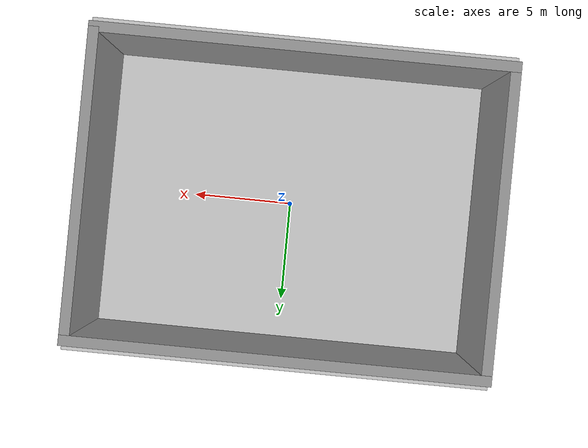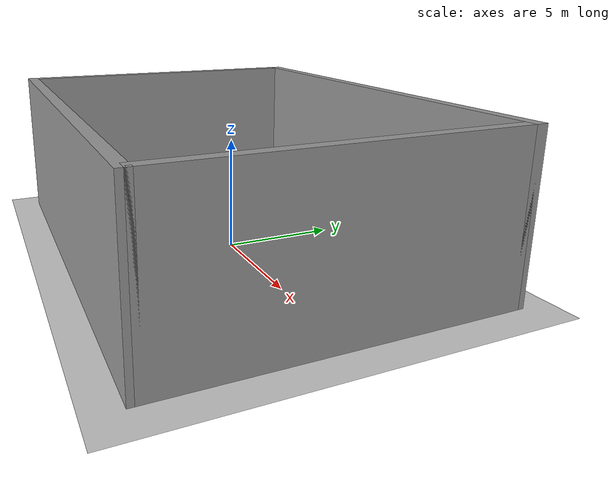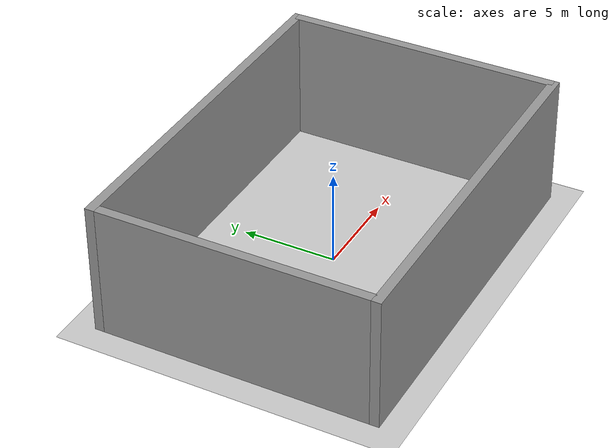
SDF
<sdf version="1.7">
  <world name="default">

    <model name='ground_plane'>
      <static>1</static>
      <link name='link'>
	<pose>0 0 0 0 0 0</pose>
	<collision name='collision'>
	  <geometry>
	    <plane>
	      <normal>0 0 1</normal>
	      <size>20 15</size>
	    </plane>
	  </geometry>
	  <surface>
	    <contact>
	      <collide_bitmask>65535</collide_bitmask>
	      <ode/>
	    </contact>
	    <friction>
	      <ode>
	        <mu>100</mu>
	        <mu2>50</mu2>
	      </ode>
	      <torsional>
	        <ode/>
	      </torsional>
	    </friction>
	    <bounce/>
   	  </surface>
	  <max_contacts>10</max_contacts>
	</collision>
	<visual name='visual'>
	  <cast_shadows>0</cast_shadows>
	  <geometry>
	    <plane>
	      <normal>0 0 1</normal>
	      <size>20 15</size>
	    </plane>
	  </geometry>
	  <material>
	    <script>
	      <uri>file://media/materials/scripts/gazebo.material</uri>
	      <name>Gazebo/Grey</name>
	    </script>
	  </material>
	</visual>
	<self_collide>0</self_collide>
	<enable_wind>0</enable_wind>
	<kinematic>0</kinematic>
      </link>
    </model>
    <model name='walls'>
      <link name='wall_1'>
        <pose>0 7.25 3.5 0 0 0</pose>
        <collision name='collision'>
          <geometry>
            <box>
              <size>20 0.5 7</size>
            </box>
          </geometry>
          <surface>
            <contact>
              <collide_bitmask>65535</collide_bitmask>
              <ode/>
            </contact>
            <friction>
              <ode>
                <mu>100</mu>
                <mu2>50</mu2>
              </ode>
            <torsional>
              <ode/>
            </torsional>
            </friction>
            <bounce/>
          </surface>
          <max_contacts>10</max_contacts>
        </collision>
        <visual name='visual'>
          <geometry>
            <box>
              <size>20 0.5 7</size>
            </box>
          </geometry>
          <material>
            <script>
              <uri>file://media/materials/scripts/gazebo.material</uri>
              <name>Gazebo/Grey</name>
            </script>
          </material>
        </visual>
        <self_collide>0</self_collide>
        <enable_wind>0</enable_wind>
        <kinematic>0</kinematic>
      </link>
      <link name='wall_2'>
	<pose>9.75 0 3.5 0 0 0</pose>
        <collision name='collision'>
          <geometry>
            <box>
              <size>0.5 14.5 7</size>
            </box>
          </geometry>
          <surface>
            <contact>
              <collide_bitmask>65535</collide_bitmask>
              <ode/>
            </contact>
            <friction>
              <ode>
                <mu>100</mu>
                <mu2>50</mu2>
              </ode>
              <torsional>
                <ode/>
              </torsional>
            </friction>
            <bounce/>
          </surface>
          <max_contacts>10</max_contacts>
        </collision>
        <visual name='visual'>
          <geometry>
            <box>
              <size>0.5 14.5 7</size>
            </box>
          </geometry>
          <material>
            <script>
              <uri>file://media/materials/scripts/gazebo.material</uri>
              <name>Gazebo/Grey</name>
            </script>
          </material>
        </visual>
        <self_collide>0</self_collide>
        <enable_wind>0</enable_wind>
        <kinematic>0</kinematic>
      </link>
      <link name='wall_3'>
	<pose>0 -7.25 3.5 0 0 0</pose>
        <collision name='collision'>
          <geometry>
          <box>
            <size>20 0.5 7</size>
          </box>
          </geometry>
          <surface>
            <contact>
              <collide_bitmask>65535</collide_bitmask>
              <ode/>
            </contact>
            <friction>
              <ode>
                <mu>100</mu>
                <mu2>50</mu2>
              </ode>
              <torsional>
                <ode/>
              </torsional>
            </friction>
            <bounce/>
          </surface>
          <max_contacts>10</max_contacts>
        </collision>
        <visual name='visual'>
          <geometry>
            <box>
              <size>20 0.5 7</size>
            </box>
          </geometry>
          <material>
            <script>
              <uri>file://media/materials/scripts/gazebo.material</uri>
              <name>Gazebo/Grey</name>
            </script>
          </material>
        </visual>
        <self_collide>0</self_collide>
        <enable_wind>0</enable_wind>
        <kinematic>0</kinematic>
      </link>
      <link name='wall_4'>
	<pose>-9.75 0 3.5 0 0 0</pose>
        <collision name='collision'>
          <geometry>
            <box>
              <size>0.5 14.5 7</size>
            </box>
          </geometry>
          <surface>
            <contact>
              <collide_bitmask>65535</collide_bitmask>
              <ode/>
            </contact>
            <friction>
              <ode>
                <mu>100</mu>
                <mu2>50</mu2>
              </ode>
              <torsional>
                <ode/>
              </torsional>
            </friction>
            <bounce/>
          </surface>
          <max_contacts>10</max_contacts>
        </collision>
        <visual name='visual'>
          <geometry>
            <box>
              <size>0.5 14.5 7</size>
            </box>
          </geometry>
          <material>
            <script>
              <uri>file://media/materials/scripts/gazebo.material</uri>
              <name>Gazebo/Grey</name>
            </script>
          </material>
        </visual>
        <self_collide>0</self_collide>
        <enable_wind>0</enable_wind>
        <kinematic>0</kinematic>
      </link>
    </model>
  </world>
</sdf>
